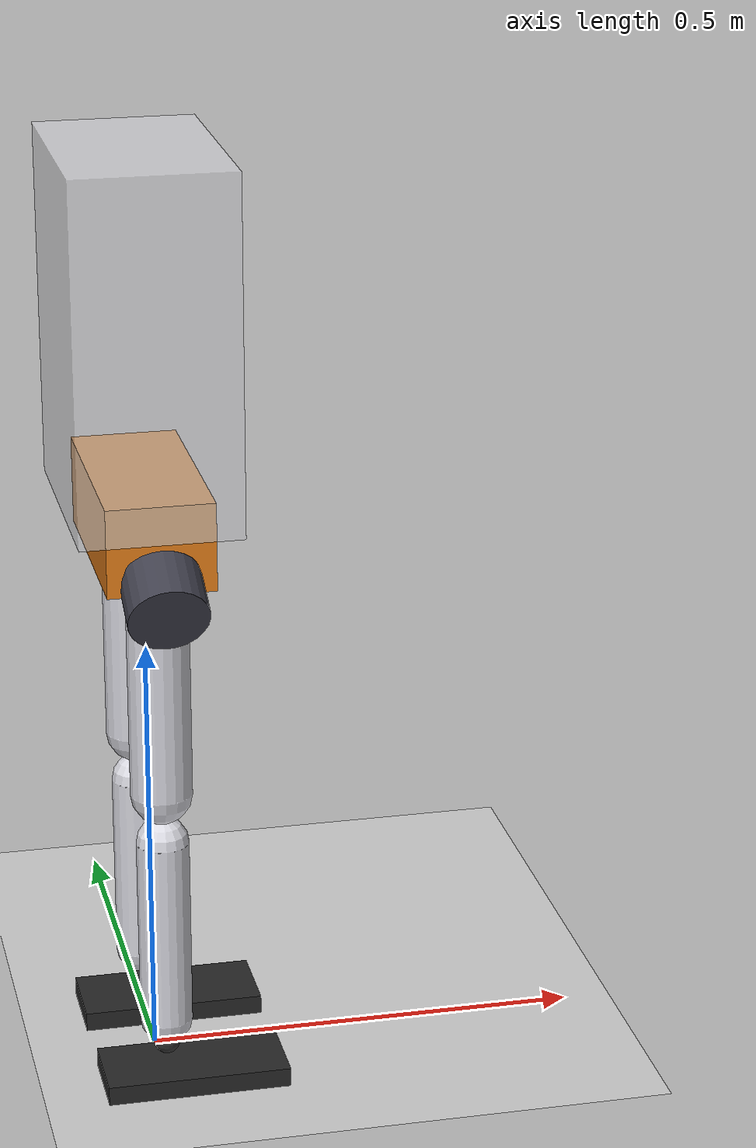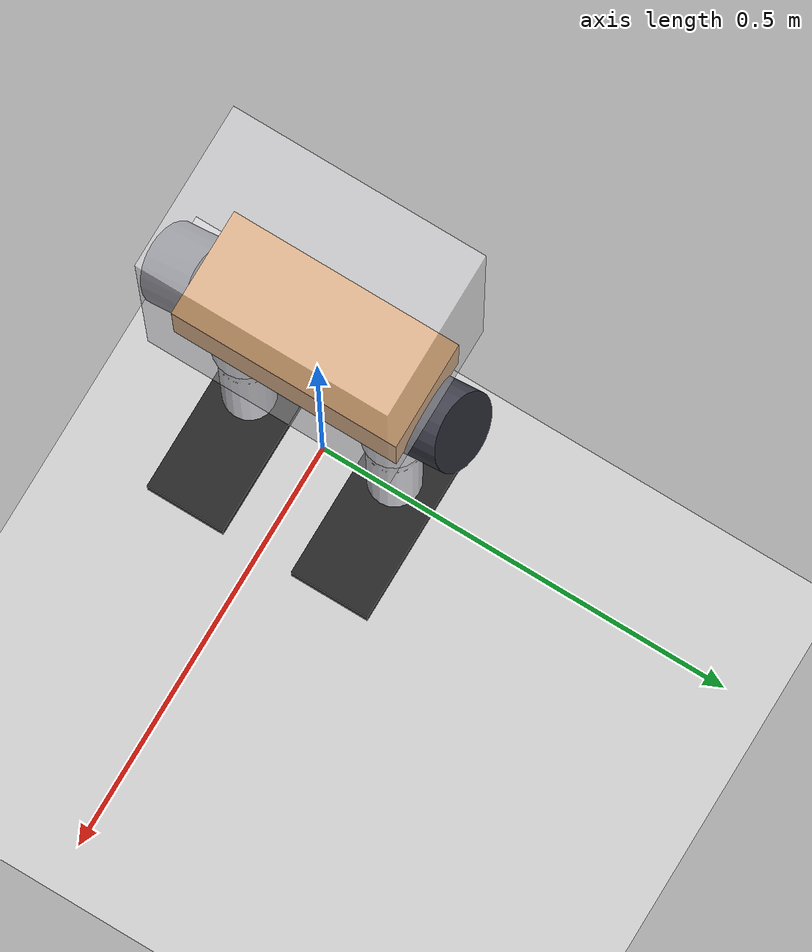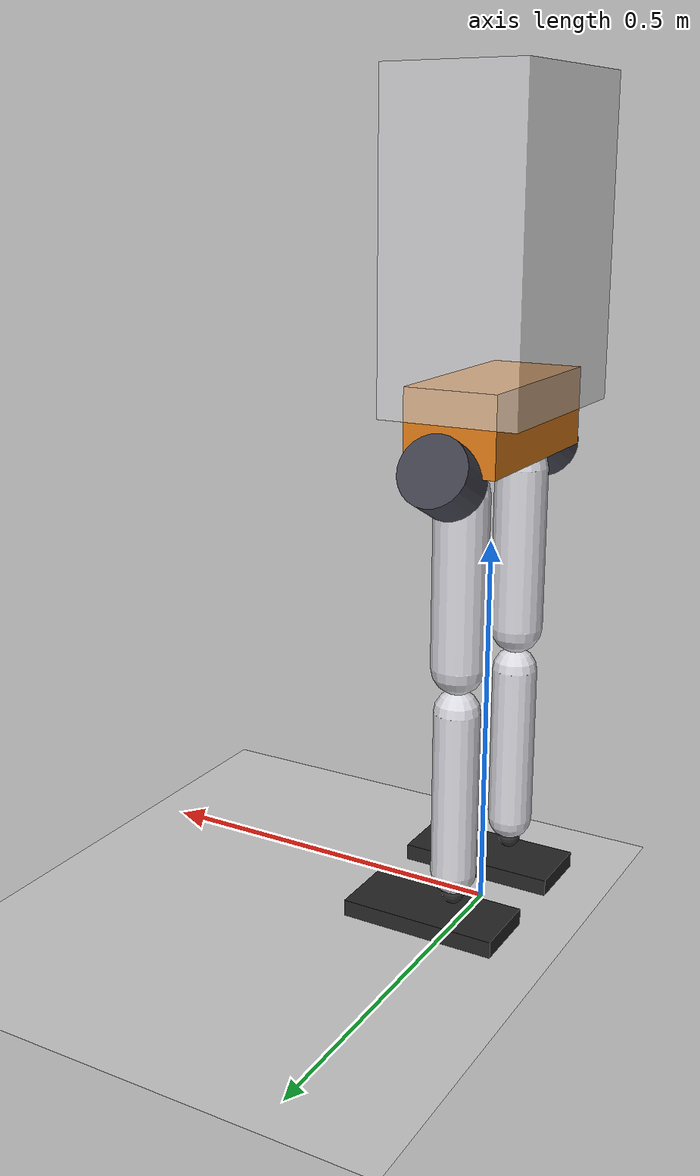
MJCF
<mujoco model="jx1_analysis">
  <compiler angle="radian" autolimits="true"/>
  <option timestep="0.001" gravity="0 0 -9.81" integrator="implicitfast"/>
  <worldbody>
    <geom name="floor" type="plane" size="5 5 0.1" rgba=".8 .8 .8 1"/>
    <light pos="0 0 3" dir="0 0 -1"/>
    <body name="pelvis" pos="0 0 0.61000">
      <freejoint name="root"/>
      <inertial pos="0 0 0.06375" mass="2" diaginertia="0.015665 0.002765 0.01594"/>
      <geom type="box" size="0.06 0.13 0.05" pos="0 0 0.05" rgba=".9 .5 .1 1" contype="0" conaffinity="0"/>
      <site name="imu" pos="0 0 0.05" size="0.01"/>
      <body name="upper_body" pos="0 0 0">
        <inertial pos="0 0 0.26" mass="12" diaginertia="0.2925 0.2425 0.13"/>
        <geom type="box" size="0.09 0.14 0.2" pos="0 0 0.26" rgba=".9 .9 .92 .6" contype="0" conaffinity="0"/>
      </body>
      <body name="l_hip_yaw_link" pos="0 0.09 0">
<inertial pos="-0.0468182 0 0.00363636" mass="1.1" diaginertia="0.00135712 0.00141286 0.00139407"/>
<joint name="l_hip_yaw" axis="0 0 1" range="-0.698132 0.785398" limited="true" armature="0.01" damping="0.0"/>
<geom type="cylinder" size="0.035 0.03" pos="0 0 0.03" rgba=".3 .3 .35 1" contype="0" conaffinity="0"/>
<body name="l_hip_roll_link" pos="0 0 0">
<inertial pos="0 0.0531818 0" mass="1.1" diaginertia="0.00107907 0.00133833 0.00107907"/>
<joint name="l_hip_roll" axis="1 0 0" range="-0.436332 0.785398" limited="true" armature="0.02" damping="0.0"/>
<geom type="cylinder" size="0.045 0.03" euler="90 0 0" pos="0 0.055 0" rgba=".25 .25 .3 1" contype="0" conaffinity="0"/>
<body name="l_thigh" pos="0 0 0">
<inertial pos="0 0 -0.255" mass="1.35" diaginertia="0.00560063 0.00593625 0.00115688"/>
<joint name="l_hip_pitch" axis="0 1 0" range="-2.007129 0.610865" limited="true" armature="0.02" damping="0.0"/>
<geom type="capsule" fromto="0 0 -0.03 0 0 -0.25" size="0.035" rgba=".85 .85 .88 1" contype="0" conaffinity="0"/>
<body name="l_shin" pos="0 0 -0.28">
<inertial pos="-0.0141935 0 -0.0843548" mass="1.55" diaginertia="0.00511998 0.0041546 0.00237087"/>
<joint name="l_knee" axis="0 1 0" range="0.000000 2.356194" limited="true" armature="0.02" damping="0.0"/>
<geom type="capsule" fromto="0 0 -0.03 0 0 -0.25" size="0.03" rgba=".85 .85 .88 1" contype="0" conaffinity="0"/>
<body name="l_ankle_cross" pos="0 0 -0.28">
<inertial pos="0 0 0" mass="0.05" diaginertia="7.5e-06 7.5e-06 7.5e-06"/>
<joint name="l_ankle_pitch" axis="0 1 0" range="-1.047198 0.610865" limited="true" armature="0.02" damping="0.0"/>
<geom type="sphere" size="0.015" rgba=".2 .2 .2 1" contype="0" conaffinity="0"/>
<body name="l_foot" pos="0 0 0">
<inertial pos="0.03 0 -0.035" mass="0.35" diaginertia="0.000289479 0.0013125 0.00154948"/>
<joint name="l_ankle_roll" axis="1 0 0" range="-0.349066 0.349066" limited="true" armature="0.010114" damping="0.0"/>
<geom name="l_foot_geom" type="box" size="0.105 0.0475 0.011" pos="0.03 0 -0.03900000000000001" rgba=".15 .15 .15 1" friction="1.0 0.02 0.001"/><site name="l_sole" pos="0 0 -0.05" size="0.01"/>
</body></body></body></body></body></body>
      <body name="r_hip_yaw_link" pos="0 -0.09 0">
<inertial pos="-0.0468182 -0 0.00363636" mass="1.1" diaginertia="0.00135712 0.00141286 0.00139407"/>
<joint name="r_hip_yaw" axis="0 0 1" range="-0.785398 0.698132" limited="true" armature="0.01" damping="0.0"/>
<geom type="cylinder" size="0.035 0.03" pos="0 0 0.03" rgba=".3 .3 .35 1" contype="0" conaffinity="0"/>
<body name="r_hip_roll_link" pos="0 0 0">
<inertial pos="0 -0.0531818 0" mass="1.1" diaginertia="0.00107907 0.00133833 0.00107907"/>
<joint name="r_hip_roll" axis="1 0 0" range="-0.785398 0.436332" limited="true" armature="0.02" damping="0.0"/>
<geom type="cylinder" size="0.045 0.03" euler="90 0 0" pos="0 -0.055 0" rgba=".25 .25 .3 1" contype="0" conaffinity="0"/>
<body name="r_thigh" pos="0 0 0">
<inertial pos="0 -0 -0.255" mass="1.35" diaginertia="0.00560063 0.00593625 0.00115688"/>
<joint name="r_hip_pitch" axis="0 1 0" range="-2.007129 0.610865" limited="true" armature="0.02" damping="0.0"/>
<geom type="capsule" fromto="0 0 -0.03 0 0 -0.25" size="0.035" rgba=".85 .85 .88 1" contype="0" conaffinity="0"/>
<body name="r_shin" pos="0 0 -0.28">
<inertial pos="-0.0141935 -0 -0.0843548" mass="1.55" diaginertia="0.00511998 0.0041546 0.00237087"/>
<joint name="r_knee" axis="0 1 0" range="0.000000 2.356194" limited="true" armature="0.02" damping="0.0"/>
<geom type="capsule" fromto="0 0 -0.03 0 0 -0.25" size="0.03" rgba=".85 .85 .88 1" contype="0" conaffinity="0"/>
<body name="r_ankle_cross" pos="0 0 -0.28">
<inertial pos="0 -0 0" mass="0.05" diaginertia="7.5e-06 7.5e-06 7.5e-06"/>
<joint name="r_ankle_pitch" axis="0 1 0" range="-1.047198 0.610865" limited="true" armature="0.02" damping="0.0"/>
<geom type="sphere" size="0.015" rgba=".2 .2 .2 1" contype="0" conaffinity="0"/>
<body name="r_foot" pos="0 0 0">
<inertial pos="0.03 -0 -0.035" mass="0.35" diaginertia="0.000289479 0.0013125 0.00154948"/>
<joint name="r_ankle_roll" axis="1 0 0" range="-0.349066 0.349066" limited="true" armature="0.010114" damping="0.0"/>
<geom name="r_foot_geom" type="box" size="0.105 0.0475 0.011" pos="0.03 0 -0.03900000000000001" rgba=".15 .15 .15 1" friction="1.0 0.02 0.001"/><site name="r_sole" pos="0 0 -0.05" size="0.01"/>
</body></body></body></body></body></body>
    </body>
  </worldbody>

</mujoco>
